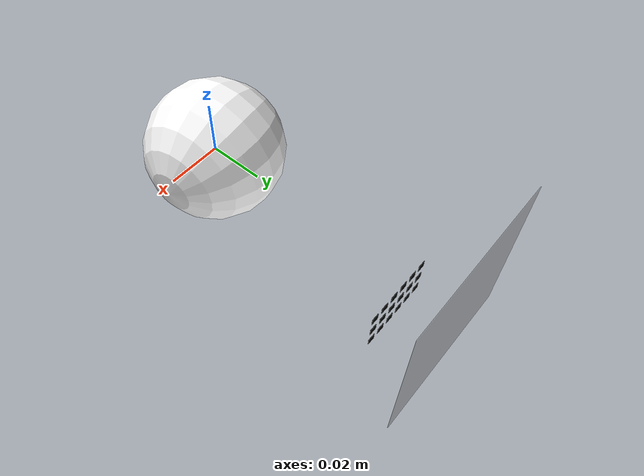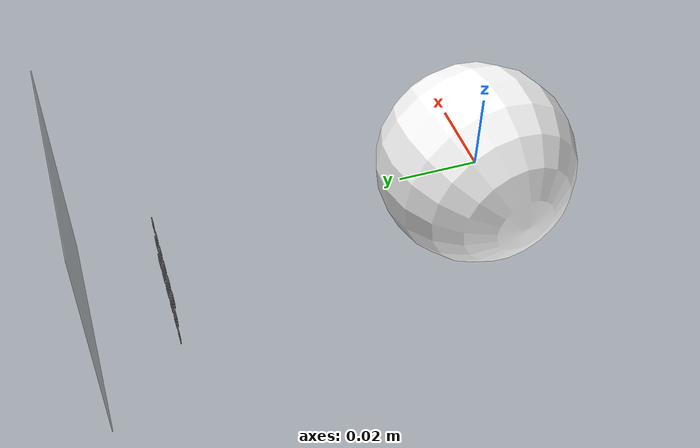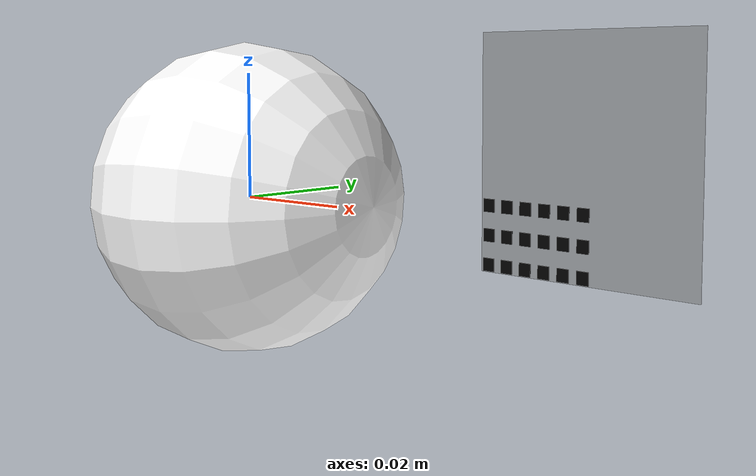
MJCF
<?xml version="1.0"?>
<mujoco>
    <compiler angle="radian"/>
    <option collision="all" timestep="0.002"/>
    <size njmax="1000" nconmax="400"/>
    <default class="main">
        <default class="eye">
            <position ctrllimited="true" kp="5"/>
            <joint type="hinge" stiffness="0.0" damping="0.5" armature="0.0" limited="true"/>
        </default>
        <default class="smart-glass-grid">
            <geom type="box" size="0.0015 0.0001 0.0015" rgba="0 0 0 1"/>
        </default>
        <default class="background-grid">
            <geom type="box" size="0.03 0.0001 0.03" rgba="0.5 0.5 0.5 0.55"/>
        </default>
    </default>
    <asset>
        <texture type="skybox" builtin="gradient" rgb1="1 1 1" rgb2="0.6 0.8 1" width="256" height="256"/>
        <texture type="cube" name="blue-eye" file="assets/blue_eye_texture_circle.png" gridsize="3 4" gridlayout=".U..LFRB.D.."/>
        <material name="blue-eye" texture="blue-eye" texuniform="true"/>
        <mesh name="eye" file="assets/basic_eye_2.stl" scale="0.05 0.05 0.05"/>
    </asset>
    <worldbody>
        <light name="scene_directional_light" directional="true" castshadow="false" cutoff="4" exponent="20"
               diffuse="1 1 1" specular="0 0 0" pos=".9 .3 2.5"/>

        <camera name="env" pos="-0.1 -0.05 0.05" euler="1.0 -0.85 -0.37"/>

        <body name="eye" pos="0 0 0" quat="0.7071068 0.7071068 0 0">
            <geom name="eye" type="sphere" size="0.025" material="blue-eye" rgba="1 1 1 1" quat="0.6625191 0.0130711 0.7488417 0.0115643"/>
            <camera name="eye" fovy="90"/>
            <joint name="eye-joint-x" class="eye" axis="1 0 0" range="-1.0 1.0"/>
            <joint name="eye-joint-y" class="eye" axis="0 1 0" range="-1.0 1.0"/>
            <site name="rangefinder-site" quat="0 0 1 0"/>
        </body>

        <body name="smart-glass-pane" pos="0 0.08 0">
            <geom name="grid-0" pos="-0.0125 0 -0.010" class="smart-glass-grid"/>
            <geom name="grid-1" pos="-0.0075 0 -0.010" class="smart-glass-grid"/>
            <geom name="grid-2" pos="-0.0025 0 -0.010" class="smart-glass-grid"/>
            <geom name="grid-3" pos="0.0025 0 -0.010" class="smart-glass-grid"/>
            <geom name="grid-4" pos="0.0075 0 -0.010" class="smart-glass-grid"/>
            <geom name="grid-5" pos="0.0125 0 -0.010" class="smart-glass-grid"/>

            <geom name="grid-6" pos="-0.0125 0 -0.0168" class="smart-glass-grid"/>
            <geom name="grid-7" pos="-0.0075 0 -0.0168" class="smart-glass-grid"/>
            <geom name="grid-8" pos="-0.0025 0 -0.0168" class="smart-glass-grid"/>
            <geom name="grid-9" pos="0.0025 0 -0.0168" class="smart-glass-grid"/>
            <geom name="grid-10" pos="0.0075 0 -0.0168" class="smart-glass-grid"/>
            <geom name="grid-11" pos="0.0125 0 -0.0168" class="smart-glass-grid"/>

            <geom name="grid-12" pos="-0.0125 0 -0.0236" class="smart-glass-grid"/>
            <geom name="grid-13" pos="-0.0075 0 -0.0236" class="smart-glass-grid"/>
            <geom name="grid-14" pos="-0.0025 0 -0.0236" class="smart-glass-grid"/>
            <geom name="grid-15" pos="0.0025 0 -0.0236" class="smart-glass-grid"/>
            <geom name="grid-16" pos="0.0075 0 -0.0236" class="smart-glass-grid"/>
            <geom name="grid-17" pos="0.0125 0 -0.0236" class="smart-glass-grid"/>
        </body>

        <body name="background-pane" pos="0 0.10 0">
            <geom name="grid-bgp" pos="-0 0 0" class="background-grid"/>
        </body>
    </worldbody>
    <actuator>
        <position name="eye-x-motor" joint="eye-joint-x" class="eye" ctrlrange="-1.0 1.0"/>
        <position name="eye-y-motor" joint="eye-joint-y" class="eye" ctrlrange="-1.0 1.0"/>
    </actuator>
    <sensor>
        <rangefinder name="rangefinder" site="rangefinder-site"/>
    </sensor>
</mujoco>
